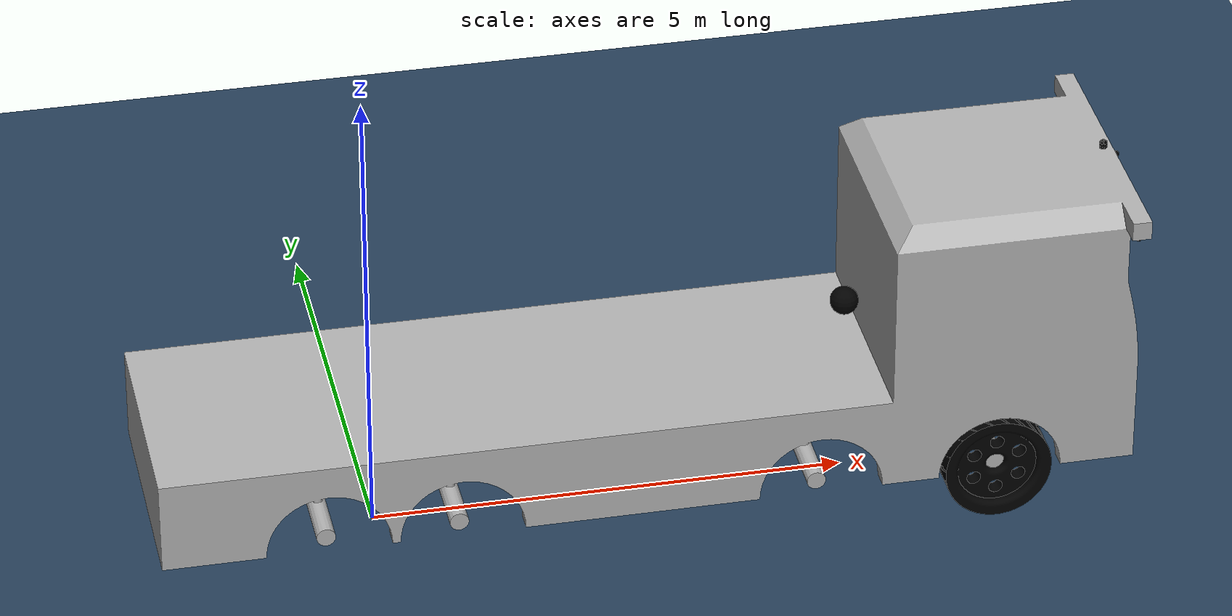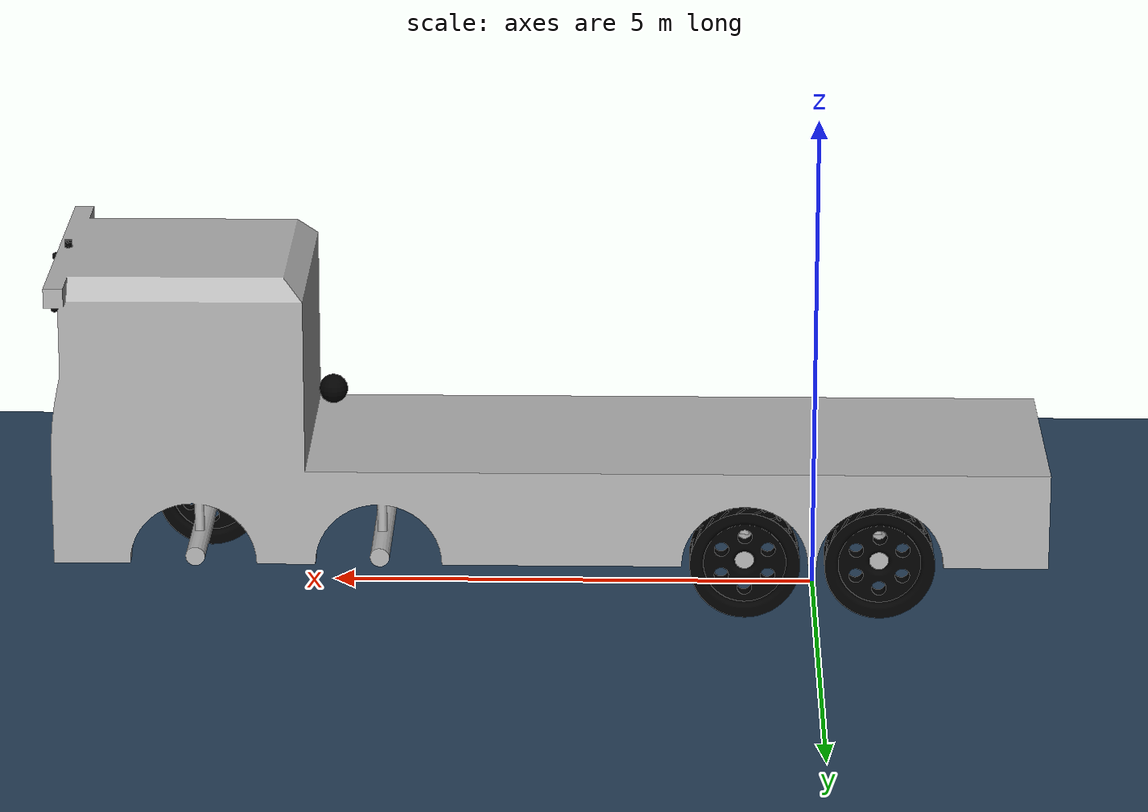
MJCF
<mujoco model="scene">

  <include file="truck_mujoco.xml"/>

  <statistic center="0 0 1.5" extent="12"/>

  <option timestep="0.005"/>

  <visual>
    <headlight diffuse="0.6 0.6 0.6" ambient="0.1 0.1 0.1" specular="0 0 0"/>
    <rgba haze="0.15 0.25 0.35 1"/>
    <global azimuth="120" elevation="-20"/>
  </visual>

  <asset>
    <texture type="skybox" builtin="gradient" rgb1="0.3 0.5 0.7" rgb2="0 0 0" width="512" height="3072"/>
    <texture name="groundplane" type="2d" builtin="checker" rgb1="0.2 0.3 0.4" rgb2="0.1 0.2 0.3" mark="edge" markrgb="0.8 0.8 0.8" width="3000" height="3000"/>
    <material name="groundplane" texture="groundplane" texrepeat="5 5" texuniform="true"/>
  </asset>

  <worldbody>
    <light pos="0 0 3" dir="0 0 -1" directional="true"/>
    <geom name="ground" type="plane" pos="0 0 0" size="100 100 0.1" material="groundplane" condim="4" friction="2.5 0.02 0.002" contype="1" conaffinity="2"/>
  </worldbody>

</mujoco>

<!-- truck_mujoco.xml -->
<mujoco model="truck">
  <compiler angle="radian" />

  <asset>
    <mesh name="base_link" content_type="model/stl" file="/home/user/ros2_ws/install/truck_description/share/truck_description/meshes/base_link.stl" scale="0.001 0.001 0.001" />
    <mesh name="left_wheel_axis4_1" content_type="model/stl" file="/home/user/ros2_ws/install/truck_description/share/truck_description/meshes/left_wheel_axis4_1.stl" scale="0.001 0.001 0.001" />
    <mesh name="left_wheel_axis3_1" content_type="model/stl" file="/home/user/ros2_ws/install/truck_description/share/truck_description/meshes/left_wheel_axis3_1.stl" scale="0.001 0.001 0.001" />
    <mesh name="right_wheel_axis4_1" content_type="model/stl" file="/home/user/ros2_ws/install/truck_description/share/truck_description/meshes/right_wheel_axis4_1.stl" scale="0.001 0.001 0.001" />
    <mesh name="right_wheel_axis3_1" content_type="model/stl" file="/home/user/ros2_ws/install/truck_description/share/truck_description/meshes/right_wheel_axis3_1.stl" scale="0.001 0.001 0.001" />
    <mesh name="left_wheel_axis2_1" content_type="model/stl" file="/home/user/ros2_ws/install/truck_description/share/truck_description/meshes/left_wheel_axis2_1.stl" scale="0.001 0.001 0.001" />
    <mesh name="right_wheel_axis2_1" content_type="model/stl" file="/home/user/ros2_ws/install/truck_description/share/truck_description/meshes/right_wheel_axis2_1.stl" scale="0.001 0.001 0.001" />
    <mesh name="left_wheel_axis1_1" content_type="model/stl" file="/home/user/ros2_ws/install/truck_description/share/truck_description/meshes/left_wheel_axis1_1.stl" scale="0.001 0.001 0.001" />
    <mesh name="right_wheel_axis1_1" content_type="model/stl" file="/home/user/ros2_ws/install/truck_description/share/truck_description/meshes/right_wheel_axis1_1.stl" scale="0.001 0.001 0.001" />
    <mesh name="ouster_link_1" content_type="model/stl" file="/home/user/ros2_ws/install/truck_description/share/truck_description/meshes/ouster_link_1.stl" scale="0.001 0.001 0.001" />
    <mesh name="osdome_link1_1" content_type="model/stl" file="/home/user/ros2_ws/install/truck_description/share/truck_description/meshes/osdome_link1_1.stl" scale="0.001 0.001 0.001" />
    <mesh name="osdome_link2_1" content_type="model/stl" file="/home/user/ros2_ws/install/truck_description/share/truck_description/meshes/osdome_link2_1.stl" scale="0.001 0.001 0.001" />
    <mesh name="osdome_link3_1" content_type="model/stl" file="/home/user/ros2_ws/install/truck_description/share/truck_description/meshes/osdome_link3_1.stl" scale="0.001 0.001 0.001" />
  </asset>

  <worldbody>
    <body name="base_footprint">
      <inertial pos="0 0 0" mass="0.0001" diaginertia="0.0001 0.0001 0.0001" />
      <body name="base_link" pos="2.6815 0 0" quat="0 0 0 1">
        <inertial pos="-2.31579 0.0603091 2.08329" quat="2.74914e-05 0.759922 2.85481e-05 0.650014" mass="11829.5" diaginertia="100530 98410.6 12461.6" />
        <geom type="mesh" contype="0" conaffinity="0" group="1" density="0" rgba="0.7 0.7 0.7 1" mesh="base_link" />
        <geom size="5.1 1.3 1.8" pos="0 2.77217e-05 2.04082" type="box" rgba="0.7 0.7 0.7 1" group="3" contype="4" conaffinity="4" />
        <body name="left_wheel_axis4_1" pos="3.33357 -0.983719 0.602025">
          <inertial pos="3.47287e-07 4.74491e-07 4.7822e-07" quat="0.707107 0 0 0.707107" mass="121.31" diaginertia="24.2102 13.0741 13.0741" />
          <joint name="left_rot_joint_a4" pos="0 0 0" axis="0 -1 0" />
          <geom pos="-3.33357 0.983719 -0.602025" quat="1 0 0 0" type="mesh" contype="0" conaffinity="0" group="1" density="0" rgba="0 0 0 1" mesh="left_wheel_axis4_1" />
          <geom name="left_wheel_axis4_collision_1" size="0.5645" rgba="0 0 0 1" condim="4" contype="2" conaffinity="1" friction="0.9 0.02 0.002" group="3" />
        </body>
        <body name="left_wheel_axis3_1" pos="1.95157 -0.983719 0.602025">
          <inertial pos="3.47287e-07 4.74491e-07 4.7822e-07" quat="0.707107 0 0 0.707107" mass="121.31" diaginertia="24.2102 13.0741 13.0741" />
          <joint name="left_rot_joint_a3" pos="0 0 0" axis="0 -1 0" />
          <geom pos="-1.95157 0.983719 -0.602025" quat="1 0 0 0" type="mesh" contype="0" conaffinity="0" group="1" density="0" rgba="0 0 0 1" mesh="left_wheel_axis3_1" />
          <geom name="left_wheel_axis3_collision_1" size="0.5645" rgba="0 0 0 1" condim="4" contype="2" conaffinity="1" friction="0.9 0.02 0.002" group="3" />
        </body>
        <body name="right_wheel_axis4_1" pos="3.33357 1.10428 0.602025">
          <inertial pos="3.47287e-07 4.74491e-07 4.7822e-07" quat="0.707107 0 0 0.707107" mass="121.31" diaginertia="24.2102 13.0741 13.0741" />
          <joint name="right_rot_joint_a4" pos="0 0 0" axis="0 -1 0" />
          <geom pos="-3.33357 -1.10428 -0.602025" quat="1 0 0 0" type="mesh" contype="0" conaffinity="0" group="1" density="0" rgba="0 0 0 1" mesh="right_wheel_axis4_1" />
          <geom name="right_wheel_axis4_collision_1" size="0.5645" rgba="0 0 0 1" condim="4" contype="2" conaffinity="1" friction="0.9 0.02 0.002" group="3" />
        </body>
        <body name="right_wheel_axis3_1" pos="1.95157 1.10428 0.602025">
          <inertial pos="3.47287e-07 4.74491e-07 4.7822e-07" quat="0.707107 0 0 0.707107" mass="121.31" diaginertia="24.2102 13.0741 13.0741" />
          <joint name="right_rot_joint_a3" pos="0 0 0" axis="0 -1 0" />
          <geom pos="-1.95157 -1.10428 -0.602025" quat="1 0 0 0" type="mesh" contype="0" conaffinity="0" group="1" density="0" rgba="0 0 0 1" mesh="right_wheel_axis3_1" />
          <geom name="right_wheel_axis3_collision_1" size="0.5645" rgba="0 0 0 1" condim="4" contype="2" conaffinity="1" friction="0.9 0.02 0.002" group="3" />
        </body>
        <body name="left_steer_axis2_link" pos="-1.79843 -1.00522 0.602025">
          <inertial pos="0 0 0" mass="0.01" diaginertia="1e-05 1e-05 1e-05" />
          <joint name="left_steer_joint_a2" pos="0 0 0" axis="0 0 1" range="-0.523599 0.523599" actuatorfrcrange="-1e8 1e8" damping="1e4" armature="1e2" />
          <body name="left_wheel_axis2_1">
            <inertial pos="3.47287e-07 4.74491e-07 4.7822e-07" quat="0.707107 0 0 0.707107" mass="121.31" diaginertia="24.2102 13.0741 13.0741" />
            <joint name="left_rot_joint_a2" pos="0 0 0" axis="0 -1 0" />
            <geom pos="1.79843 1.00522 -0.602025" quat="1 0 0 0" type="mesh" contype="0" conaffinity="0" group="1" density="0" rgba="0 0 0 1" mesh="left_wheel_axis2_1" />
            <geom name="left_wheel_axis2_collision_1" size="0.5645" rgba="0 0 0 1" condim="4" contype="2" conaffinity="1" friction="0.9 0.02 0.002" group="3" />
          </body>
        </body>
        <body name="right_steer_axis2_link" pos="-1.79843 1.12578 0.602025">
          <inertial pos="0 0 0" mass="0.01" diaginertia="1e-05 1e-05 1e-05" />
          <joint name="right_steer_joint_a2" pos="0 0 0" axis="0 0 1" range="-0.523599 0.523599" actuatorfrcrange="-1e8 1e8" damping="1e4" armature="1e2" />
          <body name="right_wheel_axis2_1">
            <inertial pos="3.47287e-07 4.74491e-07 4.7822e-07" quat="0.707107 0 0 0.707107" mass="121.31" diaginertia="24.2102 13.0741 13.0741" />
            <joint name="right_rot_joint_a2" pos="0 0 0" axis="0 -1 0" />
            <geom pos="1.79843 -1.12578 -0.602025" quat="1 0 0 0" type="mesh" contype="0" conaffinity="0" group="1" density="0" rgba="0 0 0 1" mesh="right_wheel_axis2_1" />
            <geom name="right_wheel_axis2_collision_1" size="0.5645" rgba="0 0 0 1" condim="4" contype="2" conaffinity="1" friction="0.9 0.02 0.002" group="3" />
          </body>
        </body>
        <body name="left_steer_axis1_link" pos="-3.69843 -1.00522 0.602025">
          <inertial pos="0 0 0" mass="0.01" diaginertia="1e-05 1e-05 1e-05" />
          <joint name="left_steer_joint_a1" pos="0 0 0" axis="0 0 1" range="-0.523599 0.523599" actuatorfrcrange="-1e8 1e8" damping="1e4" armature="1e2" />
          <body name="left_wheel_axis1_1">
            <inertial pos="3.47287e-07 4.74491e-07 4.7822e-07" quat="0.707107 0 0 0.707107" mass="121.31" diaginertia="24.2102 13.0741 13.0741" />
            <joint name="left_rot_joint_a1" pos="0 0 0" axis="0 -1 0" />
            <geom pos="3.69843 1.00522 -0.602025" quat="1 0 0 0" type="mesh" contype="0" conaffinity="0" group="1" density="0" rgba="0 0 0 1" mesh="left_wheel_axis1_1" />
            <geom name="left_wheel_axis1_collision_1" size="0.5645" rgba="0 0 0 1" condim="4" contype="2" conaffinity="1" friction="0.9 0.02 0.002" group="3" />
          </body>
        </body>
        <body name="right_steer_axis1_link" pos="-3.69843 1.12578 0.602025">
          <inertial pos="0 0 0" mass="0.01" diaginertia="1e-05 1e-05 1e-05" />
          <joint name="right_steer_joint_a1" pos="0 0 0" axis="0 0 1" range="-0.523599 0.523599" actuatorfrcrange="-1e8 1e8" damping="1e4" armature="1e2" />
          <body name="right_wheel_axis1_1">
            <inertial pos="3.47287e-07 4.74491e-07 4.7822e-07" quat="0.707107 0 0 0.707107" mass="121.31" diaginertia="24.2102 13.0741 13.0741" />
            <joint name="right_rot_joint_a1" pos="0 0 0" axis="0 -1 0" />
            <geom pos="3.69843 -1.12578 -0.602025" quat="1 0 0 0" type="mesh" contype="0" conaffinity="0" group="1" density="0" rgba="0 0 0 1" mesh="right_wheel_axis1_1" />
            <geom name="right_wheel_axis1_collision_1" size="0.5645" rgba="0 0 0 1" condim="4" contype="2" conaffinity="1" friction="0.9 0.02 0.002" group="3" />
          </body>
        </body>
        <body name="ouster_link_1" pos="-5.03468 0.060281 3.60202">
          <inertial pos="1.86805e-07 0.000453356 0.0302899" quat="-0.070333 0.7036 -0.070333 0.7036" mass="2.20702" diaginertia="0.00165342 0.00159158 0.001578" />
          <geom pos="5.03468 -0.060281 -3.60203" quat="1 0 0 0" type="mesh" contype="0" conaffinity="0" group="1" density="0" rgba="0 0 0 1" mesh="ouster_link_1" />
          <geom pos="5.03468 -0.060281 -3.60203" quat="1 0 0 0" type="mesh" rgba="0 0 0 1" mesh="ouster_link_1" group="1" />
        </body>
        <body name="osdome_link1_1" pos="-5.13043 0.060281 3.50203">
          <inertial pos="-0.0318638 0.00046348 3.24976e-07" quat="0.529145 0.529145 0.469048 0.469048" mass="2.30475" diaginertia="0.00168357 0.001666 0.00157443" />
          <geom pos="5.13043 -0.060281 -3.50203" quat="1 0 0 0" type="mesh" contype="0" conaffinity="0" group="1" density="0" rgba="0 0 0 1" mesh="osdome_link1_1" />
          <geom pos="5.13043 -0.060281 -3.50203" quat="1 0 0 0" type="mesh" rgba="0 0 0 1" mesh="osdome_link1_1" group="1" />
        </body>
        <body name="osdome_link2_1" pos="-5.03043 -1.33101 3.40203">
          <inertial pos="5.00532e-07 0.000462514 -0.0318636" quat="0.705829 0.0424952 -0.0424952 0.705829" mass="2.30475" diaginertia="0.00168357 0.001666 0.00157443" />
          <geom pos="5.03043 1.33101 -3.40203" type="mesh" contype="0" conaffinity="0" group="1" density="0" rgba="0 0 0 1" mesh="osdome_link2_1" />
          <geom pos="5.03043 1.33101 -3.40203" type="mesh" rgba="0 0 0 1" mesh="osdome_link2_1" group="1" />
        </body>
        <body name="osdome_link3_1" pos="-5.03001 1.46028 3.40203">
          <inertial pos="-3.99884e-09 0.000463483 -0.0318636" quat="0.705829 0.0424952 -0.0424952 0.705829" mass="2.30475" diaginertia="0.00168357 0.001666 0.00157443" />
          <geom pos="5.03001 -1.46028 -3.40203" type="mesh" contype="0" conaffinity="0" group="1" density="0" rgba="0 0 0 1" mesh="osdome_link3_1" />
          <geom pos="5.03001 -1.46028 -3.40203" type="mesh" rgba="0 0 0 1" mesh="osdome_link3_1" group="1" />
        </body>
        <body name="imu_link" pos="-2.31791 0.060311 2.08435">
          <inertial pos="0 0 0" mass="0.001" diaginertia="9e-09 9e-09 9e-09" />
          <geom size="0.15" contype="0" conaffinity="0" group="1" density="0" rgba="0 0 0 1" />
          <geom size="0.15" rgba="0 0 0 1" group="1" />
        </body>
      </body>
    <freejoint name="root_freejoint" /></body>
  </worldbody>
<option solver="Newton" iterations="50" tolerance="1e-10" /><actuator>
  <position name="left_steer_joint_a1" joint="left_steer_joint_a1" kp="5e4" kv="1e4" />
  <position name="right_steer_joint_a1" joint="right_steer_joint_a1" kp="5e4" kv="1e4" />
  <position name="left_steer_joint_a2" joint="left_steer_joint_a2" kp="5e4" kv="1e4" />
  <position name="right_steer_joint_a2" joint="right_steer_joint_a2" kp="5e4" kv="1e4" />
  <velocity name="left_rot_joint_a1" joint="left_rot_joint_a1" kv="7000" forcerange="-2e7 2e7" />
  <velocity name="right_rot_joint_a1" joint="right_rot_joint_a1" kv="7000" forcerange="-2e7 2e7" />
  <velocity name="left_rot_joint_a2" joint="left_rot_joint_a2" kv="7000" forcerange="-2e7 2e7" />
  <velocity name="right_rot_joint_a2" joint="right_rot_joint_a2" kv="7000" forcerange="-2e7 2e7" />
  <velocity name="left_rot_joint_a3" joint="left_rot_joint_a3" kv="7000" forcerange="-2e7 2e7" />
  <velocity name="right_rot_joint_a3" joint="right_rot_joint_a3" kv="7000" forcerange="-2e7 2e7" />
  <velocity name="left_rot_joint_a4" joint="left_rot_joint_a4" kv="7000" forcerange="-2e7 2e7" />
  <velocity name="right_rot_joint_a4" joint="right_rot_joint_a4" kv="7000" forcerange="-2e7 2e7" />
</actuator><sensor>
  <framepos name="body_pos" objtype="body" objname="base_link" />
  <framequat name="body_quat" objtype="body" objname="base_link" />
<frameangvel name="body_angvel" objtype="body" objname="base_link" /></sensor></mujoco>
